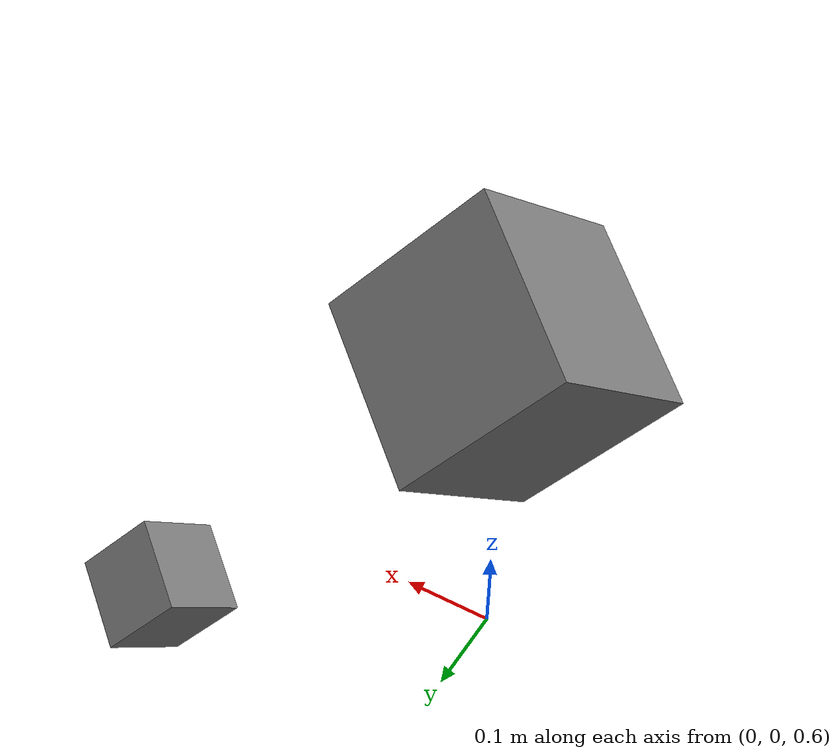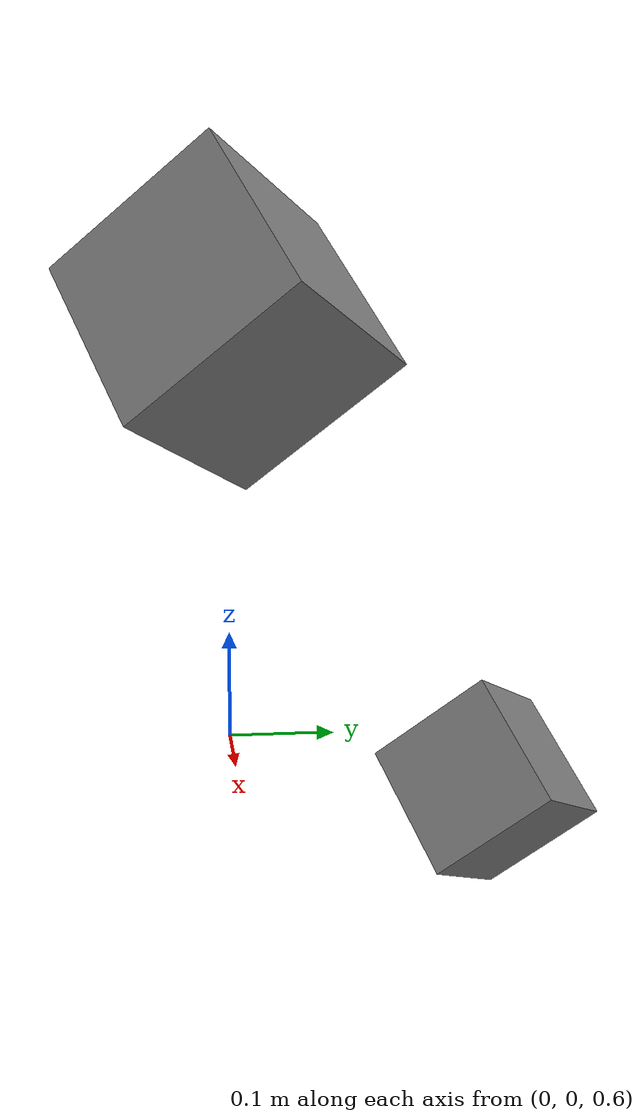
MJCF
<mujoco model="angle_degrees">
<!-- degree-mode compiler, joint range/ref/springref, and body poses via euler and axisangle -->
  <compiler angle="degree" eulerseq="zyx"/>

  <worldbody>
    <body name="body_euler" pos="0 0 1" euler="30 45 60">
      <joint name="j_euler" type="hinge" axis="0 0 1" range="-90 90" ref="15" springref="30" stiffness="1"/>
      <geom name="geom_euler" type="box" size="0.1 0.1 0.1"/>
      <body name="body_axisangle" pos="0.5 0 0" axisangle="0 0 1 90">
        <joint name="j_axisangle" type="hinge" axis="1 0 0" range="-45 45" ref="10" springref="20" stiffness="1"/>
        <geom name="geom_axisangle" type="box" size="0.05 0.05 0.05"/>
      </body>
    </body>
  </worldbody>
</mujoco>
